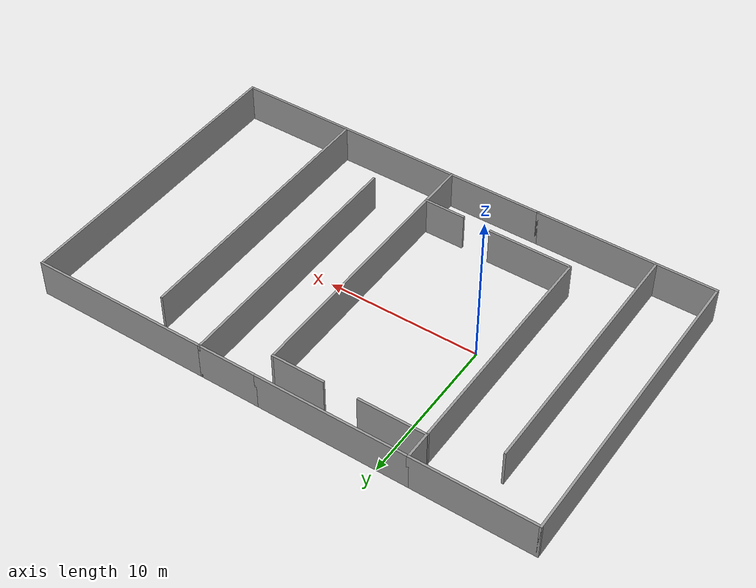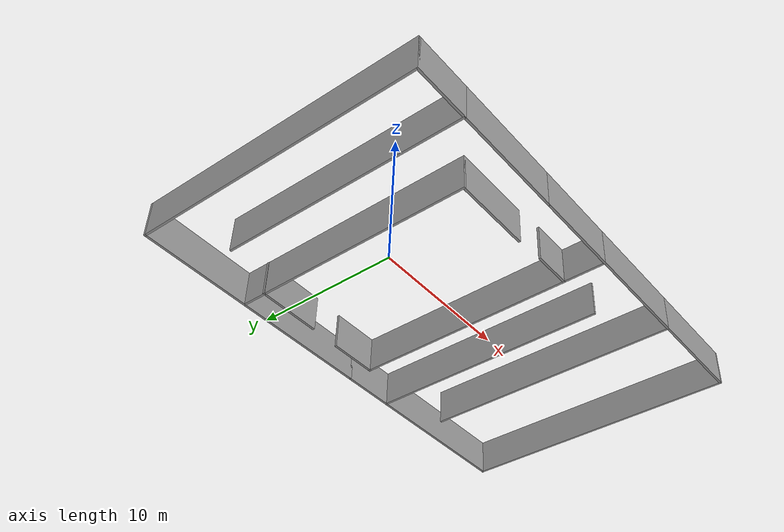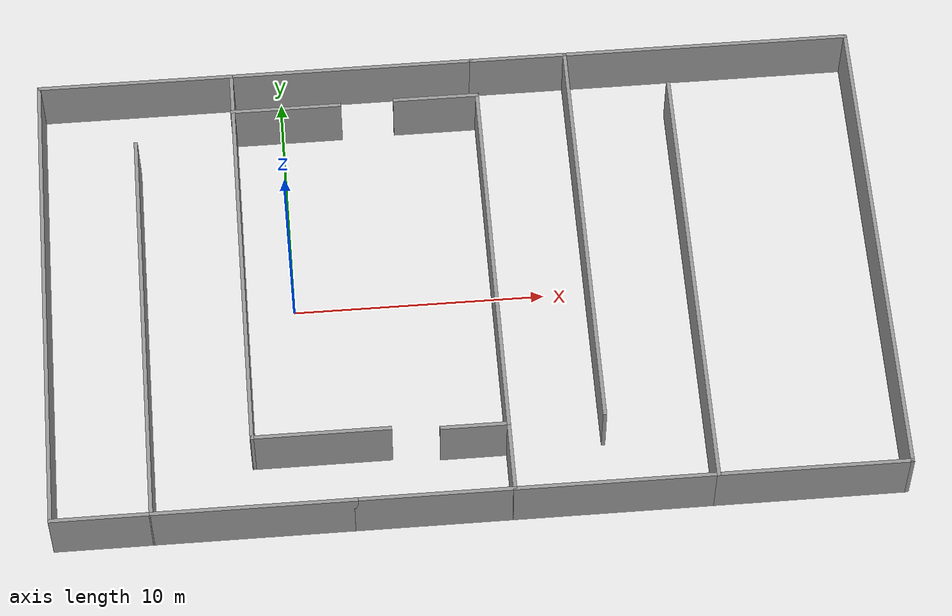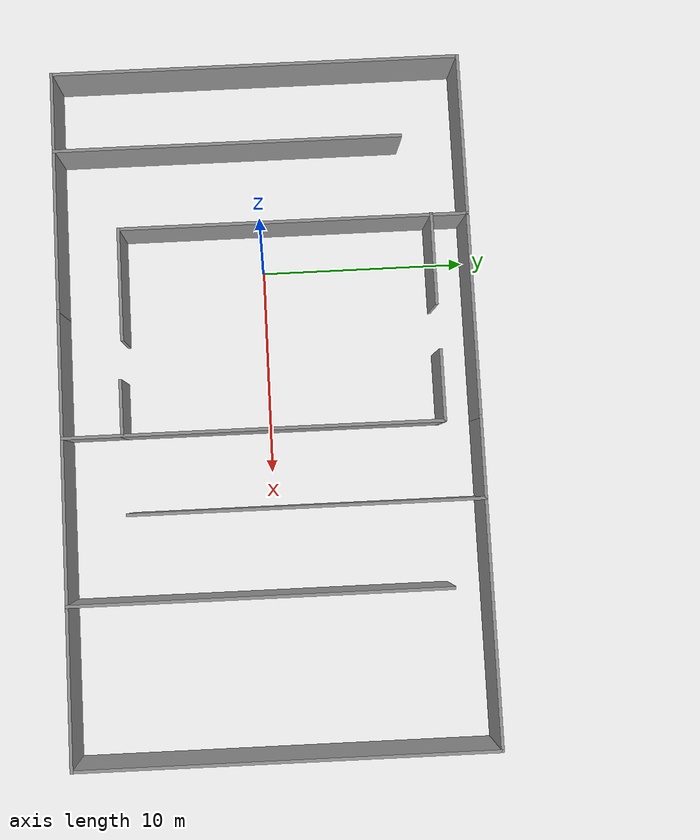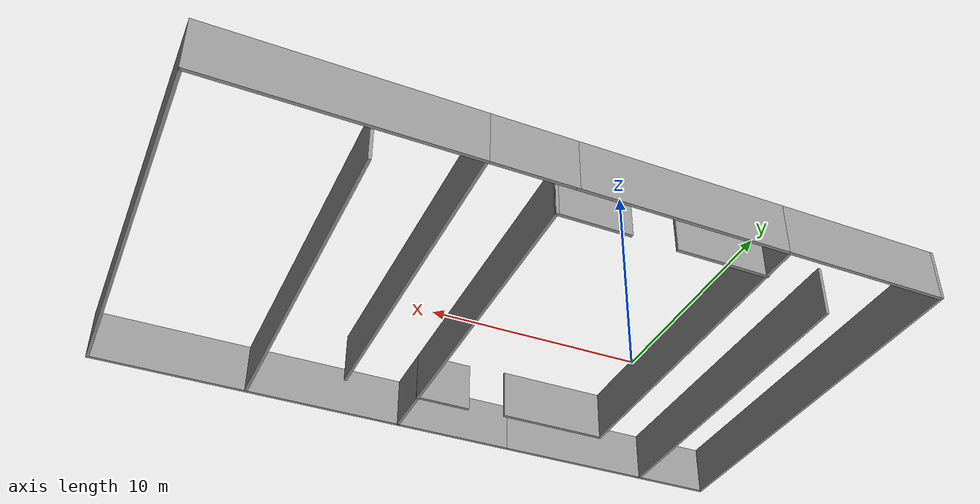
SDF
<?xml version='1.0' encoding='utf-8'?>
<sdf version="1.7">
  <model name="Local_0904">
    <pose>0 0 0 0 0 0</pose>
    <link name="Wall_10">
      <collision name="Wall_10_Collision">
        <geometry>
          <box>
            <size>4 0.15 2.5</size>
          </box>
        </geometry>
        <pose>0 0 1.25 0 -0 0</pose>
      </collision>
      <visual name="Wall_10_Visual">
        <pose>0 0 1.25 0 -0 0</pose>
        <geometry>
          <box>
            <size>4 0.15 2.5</size>
          </box>
        </geometry>
        <material>
          <script>
            <uri>file://media/materials/scripts/gazebo.material</uri>
            <name>Gazebo/Grey</name>
          </script>
          <ambient>1 1 1 1</ambient>
        </material>
        <meta>
          <layer>0</layer>
        </meta>
      </visual>
      <pose>-7.8885 -9.8834 0.0000 0.0000 -0.0000 0.0000</pose>
    </link>
    <link name="Wall_12">
      <collision name="Wall_12_Collision">
        <geometry>
          <box>
            <size>17 0.15 2.5</size>
          </box>
        </geometry>
        <pose>0 0 1.25 0 -0 0</pose>
      </collision>
      <visual name="Wall_12_Visual">
        <pose>0 0 1.25 0 -0 0</pose>
        <geometry>
          <box>
            <size>17 0.15 2.5</size>
          </box>
        </geometry>
        <material>
          <script>
            <uri>file://media/materials/scripts/gazebo.material</uri>
            <name>Gazebo/Grey</name>
          </script>
          <ambient>1 1 1 1</ambient>
        </material>
        <meta>
          <layer>0</layer>
        </meta>
      </visual>
      <pose>-5.9635 -1.4584 0.0000 0.0000 -0.0000 1.5708</pose>
    </link>
    <link name="Wall_14">
      <collision name="Wall_14_Collision">
        <geometry>
          <box>
            <size>8 0.15 2.5</size>
          </box>
        </geometry>
        <pose>0 0 1.25 0 -0 0</pose>
      </collision>
      <visual name="Wall_14_Visual">
        <pose>0 0 1.25 0 -0 0</pose>
        <geometry>
          <box>
            <size>8 0.15 2.5</size>
          </box>
        </geometry>
        <material>
          <script>
            <uri>file://media/materials/scripts/gazebo.material</uri>
            <name>Gazebo/Grey</name>
          </script>
          <ambient>1 1 1 1</ambient>
        </material>
        <meta>
          <layer>0</layer>
        </meta>
      </visual>
      <pose>-5.8885 9.9666 0.0000 0.0000 -0.0000 0.0000</pose>
    </link>
    <link name="Wall_16">
      <collision name="Wall_16_Collision">
        <geometry>
          <box>
            <size>17 0.15 2.5</size>
          </box>
        </geometry>
        <pose>0 0 1.25 0 -0 0</pose>
      </collision>
      <visual name="Wall_16_Visual">
        <pose>0 0 1.25 0 -0 0</pose>
        <geometry>
          <box>
            <size>17 0.15 2.5</size>
          </box>
        </geometry>
        <material>
          <script>
            <uri>file://media/materials/scripts/gazebo.material</uri>
            <name>Gazebo/Grey</name>
          </script>
          <ambient>1 1 1 1</ambient>
        </material>
        <meta>
          <layer>0</layer>
        </meta>
      </visual>
      <pose>-1.9635 1.5416 0.0000 0.0000 -0.0000 -1.5708</pose>
    </link>
    <link name="Wall_18">
      <collision name="Wall_18_Collision">
        <geometry>
          <box>
            <size>8 0.15 2.5</size>
          </box>
        </geometry>
        <pose>0 0 1.25 0 -0 0</pose>
      </collision>
      <visual name="Wall_18_Visual">
        <pose>0 0 1.25 0 -0 0</pose>
        <geometry>
          <box>
            <size>8 0.15 2.5</size>
          </box>
        </geometry>
        <material>
          <script>
            <uri>file://media/materials/scripts/gazebo.material</uri>
            <name>Gazebo/Grey</name>
          </script>
          <ambient>1 1 1 1</ambient>
        </material>
        <meta>
          <layer>0</layer>
        </meta>
      </visual>
      <pose>-2.0385 -9.8834 0.0000 0.0000 -0.0000 0.0000</pose>
    </link>
    <link name="Wall_20">
      <collision name="Wall_20_Collision">
        <geometry>
          <box>
            <size>10 0.15 2.5</size>
          </box>
        </geometry>
        <pose>0 0 1.25 0 -0 0</pose>
      </collision>
      <visual name="Wall_20_Visual">
        <pose>0 0 1.25 0 -0 0</pose>
        <geometry>
          <box>
            <size>10 0.15 2.5</size>
          </box>
        </geometry>
        <material>
          <script>
            <uri>file://media/materials/scripts/gazebo.material</uri>
            <name>Gazebo/Grey</name>
          </script>
          <ambient>1 1 1 1</ambient>
        </material>
        <meta>
          <layer>0</layer>
        </meta>
      </visual>
      <pose>2.9615 9.9666 0.0000 0.0000 -0.0000 0.0000</pose>
    </link>
    <link name="Wall_22">
      <collision name="Wall_22_Collision">
        <geometry>
          <box>
            <size>4.5 0.15 2.5</size>
          </box>
        </geometry>
        <pose>0 0 1.25 0 -0 0</pose>
      </collision>
      <visual name="Wall_22_Visual">
        <pose>0 0 1.25 0 -0 0</pose>
        <geometry>
          <box>
            <size>4.5 0.15 2.5</size>
          </box>
        </geometry>
        <material>
          <script>
            <uri>file://media/materials/scripts/gazebo.material</uri>
            <name>Gazebo/Grey</name>
          </script>
          <ambient>1 1 1 1</ambient>
        </material>
        <meta>
          <layer>0</layer>
        </meta>
      </visual>
      <pose>0.1788 8.2240 0.0000 0.0000 -0.0000 0.0000</pose>
    </link>
    <link name="Wall_25">
      <collision name="Wall_25_Collision">
        <geometry>
          <box>
            <size>6.25 0.15 2.5</size>
          </box>
        </geometry>
        <pose>0 0 1.25 0 -0 0</pose>
      </collision>
      <visual name="Wall_25_Visual">
        <pose>0 0 1.25 0 -0 0</pose>
        <geometry>
          <box>
            <size>6.25 0.15 2.5</size>
          </box>
        </geometry>
        <material>
          <script>
            <uri>file://media/materials/scripts/gazebo.material</uri>
            <name>Gazebo/Grey</name>
          </script>
          <ambient>1 1 1 1</ambient>
        </material>
        <meta>
          <layer>0</layer>
        </meta>
      </visual>
      <pose>4.9365 -9.8834 0.0000 0.0000 -0.0000 0.0000</pose>
    </link>
    <link name="Wall_26">
      <collision name="Wall_26_Collision">
        <geometry>
          <box>
            <size>3 0.15 2.5</size>
          </box>
        </geometry>
        <pose>0 0 1.25 0 -0 0</pose>
      </collision>
      <visual name="Wall_26_Visual">
        <pose>0 0 1.25 0 -0 0</pose>
        <geometry>
          <box>
            <size>3 0.15 2.5</size>
          </box>
        </geometry>
        <material>
          <script>
            <uri>file://media/materials/scripts/gazebo.material</uri>
            <name>Gazebo/Grey</name>
          </script>
          <ambient>1 1 1 1</ambient>
        </material>
        <meta>
          <layer>0</layer>
        </meta>
      </visual>
      <pose>7.9865 -8.4584 0.0000 0.0000 -0.0000 1.5708</pose>
    </link>
    <link name="Wall_27">
      <collision name="Wall_27_Collision">
        <geometry>
          <box>
            <size>2.75 0.15 2.5</size>
          </box>
        </geometry>
        <pose>0 0 1.25 0 -0 0</pose>
      </collision>
      <visual name="Wall_27_Visual">
        <pose>0 0 1.25 0 -0 0</pose>
        <geometry>
          <box>
            <size>2.75 0.15 2.5</size>
          </box>
        </geometry>
        <material>
          <script>
            <uri>file://media/materials/scripts/gazebo.material</uri>
            <name>Gazebo/Grey</name>
          </script>
          <ambient>1 1 1 1</ambient>
        </material>
        <meta>
          <layer>0</layer>
        </meta>
      </visual>
      <pose>6.6865 -7.0334 0.0000 0.0000 -0.0000 3.1416</pose>
    </link>
    <link name="Wall_29">
      <collision name="Wall_29_Collision">
        <geometry>
          <box>
            <size>5.5 0.15 2.5</size>
          </box>
        </geometry>
        <pose>0 0 1.25 0 -0 0</pose>
      </collision>
      <visual name="Wall_29_Visual">
        <pose>0 0 1.25 0 -0 0</pose>
        <geometry>
          <box>
            <size>5.5 0.15 2.5</size>
          </box>
        </geometry>
        <material>
          <script>
            <uri>file://media/materials/scripts/gazebo.material</uri>
            <name>Gazebo/Grey</name>
          </script>
          <ambient>1 1 1 1</ambient>
        </material>
        <meta>
          <layer>0</layer>
        </meta>
      </visual>
      <pose>0.7115 -6.8834 0.0000 0.0000 -0.0000 0.0000</pose>
    </link>
    <link name="Wall_32">
      <collision name="Wall_32_Collision">
        <geometry>
          <box>
            <size>3.5 0.15 2.5</size>
          </box>
        </geometry>
        <pose>0 0 1.25 0 -0 0</pose>
      </collision>
      <visual name="Wall_32_Visual">
        <pose>0 0 1.25 0 -0 0</pose>
        <geometry>
          <box>
            <size>3.5 0.15 2.5</size>
          </box>
        </geometry>
        <material>
          <script>
            <uri>file://media/materials/scripts/gazebo.material</uri>
            <name>Gazebo/Grey</name>
          </script>
          <ambient>1 1 1 1</ambient>
        </material>
        <meta>
          <layer>0</layer>
        </meta>
      </visual>
      <pose>6.3131 8.2775 0.0000 0.0000 -0.0000 0.0000</pose>
    </link>
    <link name="Wall_33">
      <collision name="Wall_33_Collision">
        <geometry>
          <box>
            <size>15.4609 0.15 2.5</size>
          </box>
        </geometry>
        <pose>0 0 1.25 0 -0 0</pose>
      </collision>
      <visual name="Wall_33_Visual">
        <pose>0 0 1.25 0 -0 0</pose>
        <geometry>
          <box>
            <size>15.4609 0.15 2.5</size>
          </box>
        </geometry>
        <material>
          <script>
            <uri>file://media/materials/scripts/gazebo.material</uri>
            <name>Gazebo/Grey</name>
          </script>
          <ambient>1 1 1 1</ambient>
        </material>
        <meta>
          <layer>0</layer>
        </meta>
      </visual>
      <pose>7.9873 0.6221 0.0000 0.0000 -0.0000 -1.5709</pose>
    </link>
    <link name="Wall_35">
      <collision name="Wall_35_Collision">
        <geometry>
          <box>
            <size>4 0.15 2.5</size>
          </box>
        </geometry>
        <pose>0 0 1.25 0 -0 0</pose>
      </collision>
      <visual name="Wall_35_Visual">
        <pose>0 0 1.25 0 -0 0</pose>
        <geometry>
          <box>
            <size>4 0.15 2.5</size>
          </box>
        </geometry>
        <material>
          <script>
            <uri>file://media/materials/scripts/gazebo.material</uri>
            <name>Gazebo/Grey</name>
          </script>
          <ambient>1 1 1 1</ambient>
        </material>
        <meta>
          <layer>0</layer>
        </meta>
      </visual>
      <pose>9.8115 9.9666 0.0000 0.0000 -0.0000 0.0000</pose>
    </link>
    <link name="Wall_37">
      <collision name="Wall_37_Collision">
        <geometry>
          <box>
            <size>17 0.15 2.5</size>
          </box>
        </geometry>
        <pose>0 0 1.25 0 -0 0</pose>
      </collision>
      <visual name="Wall_37_Visual">
        <pose>0 0 1.25 0 -0 0</pose>
        <geometry>
          <box>
            <size>17 0.15 2.5</size>
          </box>
        </geometry>
        <material>
          <script>
            <uri>file://media/materials/scripts/gazebo.material</uri>
            <name>Gazebo/Grey</name>
          </script>
          <ambient>1 1 1 1</ambient>
        </material>
        <meta>
          <layer>0</layer>
        </meta>
      </visual>
      <pose>11.7365 1.5416 0.0000 0.0000 -0.0000 -1.5708</pose>
    </link>
    <link name="Wall_39">
      <collision name="Wall_39_Collision">
        <geometry>
          <box>
            <size>8 0.15 2.5</size>
          </box>
        </geometry>
        <pose>0 0 1.25 0 -0 0</pose>
      </collision>
      <visual name="Wall_39_Visual">
        <pose>0 0 1.25 0 -0 0</pose>
        <geometry>
          <box>
            <size>8 0.15 2.5</size>
          </box>
        </geometry>
        <material>
          <script>
            <uri>file://media/materials/scripts/gazebo.material</uri>
            <name>Gazebo/Grey</name>
          </script>
          <ambient>1 1 1 1</ambient>
        </material>
        <meta>
          <layer>0</layer>
        </meta>
      </visual>
      <pose>11.9115 -9.8834 0.0000 0.0000 -0.0000 0.0000</pose>
    </link>
    <link name="Wall_41">
      <collision name="Wall_41_Collision">
        <geometry>
          <box>
            <size>18.25 0.15 2.5</size>
          </box>
        </geometry>
        <pose>0 0 1.25 0 -0 0</pose>
      </collision>
      <visual name="Wall_41_Visual">
        <pose>0 0 1.25 0 -0 0</pose>
        <geometry>
          <box>
            <size>18.25 0.15 2.5</size>
          </box>
        </geometry>
        <material>
          <script>
            <uri>file://media/materials/scripts/gazebo.material</uri>
            <name>Gazebo/Grey</name>
          </script>
          <ambient>1 1 1 1</ambient>
        </material>
        <meta>
          <layer>0</layer>
        </meta>
      </visual>
      <pose>15.8365 -0.8334 0.0000 0.0000 -0.0000 1.5708</pose>
    </link>
    <link name="Wall_43">
      <collision name="Wall_43_Collision">
        <geometry>
          <box>
            <size>11.75 0.15 2.5</size>
          </box>
        </geometry>
        <pose>0 0 1.25 0 -0 0</pose>
      </collision>
      <visual name="Wall_43_Visual">
        <pose>0 0 1.25 0 -0 0</pose>
        <geometry>
          <box>
            <size>11.75 0.15 2.5</size>
          </box>
        </geometry>
        <material>
          <script>
            <uri>file://media/materials/scripts/gazebo.material</uri>
            <name>Gazebo/Grey</name>
          </script>
          <ambient>1 1 1 1</ambient>
        </material>
        <meta>
          <layer>0</layer>
        </meta>
      </visual>
      <pose>17.5365 9.9666 0.0000 0.0000 -0.0000 0.0000</pose>
    </link>
    <link name="Wall_44">
      <collision name="Wall_44_Collision">
        <geometry>
          <box>
            <size>20 0.15 2.5</size>
          </box>
        </geometry>
        <pose>0 0 1.25 0 -0 0</pose>
      </collision>
      <visual name="Wall_44_Visual">
        <pose>0 0 1.25 0 -0 0</pose>
        <geometry>
          <box>
            <size>20 0.15 2.5</size>
          </box>
        </geometry>
        <material>
          <script>
            <uri>file://media/materials/scripts/gazebo.material</uri>
            <name>Gazebo/Grey</name>
          </script>
          <ambient>1 1 1 1</ambient>
        </material>
        <meta>
          <layer>0</layer>
        </meta>
      </visual>
      <pose>23.3365 0.0416 0.0000 0.0000 -0.0000 -1.5708</pose>
    </link>
    <link name="Wall_45">
      <collision name="Wall_45_Collision">
        <geometry>
          <box>
            <size>7.65 0.15 2.5</size>
          </box>
        </geometry>
        <pose>0 0 1.25 0 -0 0</pose>
      </collision>
      <visual name="Wall_45_Visual">
        <pose>0 0 1.25 0 -0 0</pose>
        <geometry>
          <box>
            <size>7.65 0.15 2.5</size>
          </box>
        </geometry>
        <material>
          <script>
            <uri>file://media/materials/scripts/gazebo.material</uri>
            <name>Gazebo/Grey</name>
          </script>
          <ambient>1 1 1 1</ambient>
        </material>
        <meta>
          <layer>0</layer>
        </meta>
      </visual>
      <pose>19.5865 -9.8834 0.0000 0.0000 -0.0000 3.1416</pose>
    </link>
    <link name="Wall_8">
      <collision name="Wall_8_Collision">
        <geometry>
          <box>
            <size>20 0.15 2.5</size>
          </box>
        </geometry>
        <pose>0 0 1.25 0 -0 0</pose>
      </collision>
      <visual name="Wall_8_Visual">
        <pose>0 0 1.25 0 -0 0</pose>
        <geometry>
          <box>
            <size>20 0.15 2.5</size>
          </box>
        </geometry>
        <material>
          <script>
            <uri>file://media/materials/scripts/gazebo.material</uri>
            <name>Gazebo/Grey</name>
          </script>
          <ambient>1 1 1 1</ambient>
        </material>
        <meta>
          <layer>0</layer>
        </meta>
      </visual>
      <pose>-9.8135 0.0416 0.0000 0.0000 -0.0000 -1.5708</pose>
    </link>
    <static>1</static>
  <static>1</static></model>
</sdf>
